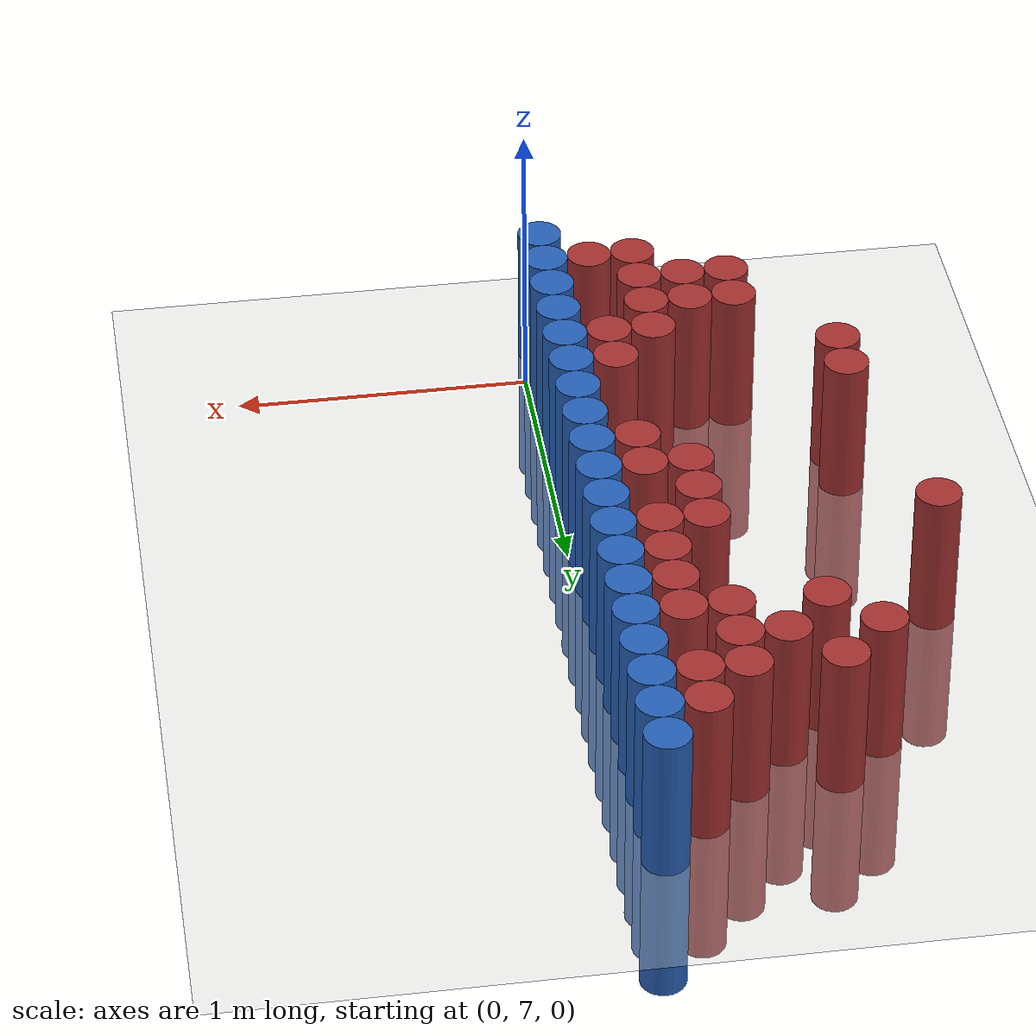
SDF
<sdf version="1.6">
 <world name="default">
  <model name="ground_plane">
   <static>1</static>
   <link name="link">
    <collision name="collision">
     <geometry><plane><normal>0 0 1</normal><size>100 100</size></plane></geometry>
     <surface><friction><ode><mu>100</mu><mu2>50</mu2></ode></friction></surface>
    </collision>
    <visual name="visual">
     <cast_shadows>0</cast_shadows>
     <geometry><plane><normal>0 0 1</normal><size>100 100</size></plane></geometry>
     <material>
      <script><uri>file://media/materials/scripts/gazebo.material</uri><name>Gazebo/Grey</name></script>
     </material>
    </visual>
   </link>
  </model>
  <model name="unit_cylinder_178">
   <static>1</static>
   <pose>-1.125000 8.475000 0.000000 0.000000 0.000000 0.000000</pose>
   <link name="link">
    <inertial>
     <mass>1</mass>
     <inertia><ixx>0.145833</ixx><ixy>0</ixy><ixz>0</ixz><iyy>0.145833</iyy><iyz>0</iyz><izz>0.125</izz></inertia>
    </inertial>
    <collision name="collision">
     <geometry><cylinder><radius>0.075000</radius><length>1</length></cylinder></geometry>
    </collision>
    <visual name="visual">
     <geometry><cylinder><radius>0.075000</radius><length>1</length></cylinder></geometry>
     <material>
      <ambient>0.648000 0.192000 0.192000 1</ambient>
      <diffuse>0.648000 0.192000 0.192000 1</diffuse>
     </material>
     <material>
      <script><name>Gazebo/Grey</name><uri>file://media/materials/scripts/gazebo.material</uri></script>
     </material>
    </visual>
   </link>
  </model>
  <model name="unit_cylinder_179">
   <static>1</static>
   <pose>-0.975000 7.575000 0.000000 0.000000 0.000000 0.000000</pose>
   <link name="link">
    <inertial>
     <mass>1</mass>
     <inertia><ixx>0.145833</ixx><ixy>0</ixy><ixz>0</ixz><iyy>0.145833</iyy><iyz>0</iyz><izz>0.125</izz></inertia>
    </inertial>
    <collision name="collision">
     <geometry><cylinder><radius>0.075000</radius><length>1</length></cylinder></geometry>
    </collision>
    <visual name="visual">
     <geometry><cylinder><radius>0.075000</radius><length>1</length></cylinder></geometry>
     <material>
      <ambient>0.648000 0.192000 0.192000 1</ambient>
      <diffuse>0.648000 0.192000 0.192000 1</diffuse>
     </material>
     <material>
      <script><name>Gazebo/Grey</name><uri>file://media/materials/scripts/gazebo.material</uri></script>
     </material>
    </visual>
   </link>
  </model>
  <model name="unit_cylinder_180">
   <static>1</static>
   <pose>-0.975000 7.725000 0.000000 0.000000 0.000000 0.000000</pose>
   <link name="link">
    <inertial>
     <mass>1</mass>
     <inertia><ixx>0.145833</ixx><ixy>0</ixy><ixz>0</ixz><iyy>0.145833</iyy><iyz>0</iyz><izz>0.125</izz></inertia>
    </inertial>
    <collision name="collision">
     <geometry><cylinder><radius>0.075000</radius><length>1</length></cylinder></geometry>
    </collision>
    <visual name="visual">
     <geometry><cylinder><radius>0.075000</radius><length>1</length></cylinder></geometry>
     <material>
      <ambient>0.648000 0.192000 0.192000 1</ambient>
      <diffuse>0.648000 0.192000 0.192000 1</diffuse>
     </material>
     <material>
      <script><name>Gazebo/Grey</name><uri>file://media/materials/scripts/gazebo.material</uri></script>
     </material>
    </visual>
   </link>
  </model>
  <model name="unit_cylinder_183">
   <static>1</static>
   <pose>-0.825000 9.075000 0.000000 0.000000 0.000000 0.000000</pose>
   <link name="link">
    <inertial>
     <mass>1</mass>
     <inertia><ixx>0.145833</ixx><ixy>0</ixy><ixz>0</ixz><iyy>0.145833</iyy><iyz>0</iyz><izz>0.125</izz></inertia>
    </inertial>
    <collision name="collision">
     <geometry><cylinder><radius>0.075000</radius><length>1</length></cylinder></geometry>
    </collision>
    <visual name="visual">
     <geometry><cylinder><radius>0.075000</radius><length>1</length></cylinder></geometry>
     <material>
      <ambient>0.648000 0.192000 0.192000 1</ambient>
      <diffuse>0.648000 0.192000 0.192000 1</diffuse>
     </material>
     <material>
      <script><name>Gazebo/Grey</name><uri>file://media/materials/scripts/gazebo.material</uri></script>
     </material>
    </visual>
   </link>
  </model>
  <model name="unit_cylinder_188">
   <static>1</static>
   <pose>-0.675000 7.125000 0.000000 0.000000 0.000000 0.000000</pose>
   <link name="link">
    <inertial>
     <mass>1</mass>
     <inertia><ixx>0.145833</ixx><ixy>0</ixy><ixz>0</ixz><iyy>0.145833</iyy><iyz>0</iyz><izz>0.125</izz></inertia>
    </inertial>
    <collision name="collision">
     <geometry><cylinder><radius>0.075000</radius><length>1</length></cylinder></geometry>
    </collision>
    <visual name="visual">
     <geometry><cylinder><radius>0.075000</radius><length>1</length></cylinder></geometry>
     <material>
      <ambient>0.648000 0.192000 0.192000 1</ambient>
      <diffuse>0.648000 0.192000 0.192000 1</diffuse>
     </material>
     <material>
      <script><name>Gazebo/Grey</name><uri>file://media/materials/scripts/gazebo.material</uri></script>
     </material>
    </visual>
   </link>
  </model>
  <model name="unit_cylinder_189">
   <static>1</static>
   <pose>-0.675000 7.275000 0.000000 0.000000 0.000000 0.000000</pose>
   <link name="link">
    <inertial>
     <mass>1</mass>
     <inertia><ixx>0.145833</ixx><ixy>0</ixy><ixz>0</ixz><iyy>0.145833</iyy><iyz>0</iyz><izz>0.125</izz></inertia>
    </inertial>
    <collision name="collision">
     <geometry><cylinder><radius>0.075000</radius><length>1</length></cylinder></geometry>
    </collision>
    <visual name="visual">
     <geometry><cylinder><radius>0.075000</radius><length>1</length></cylinder></geometry>
     <material>
      <ambient>0.648000 0.192000 0.192000 1</ambient>
      <diffuse>0.648000 0.192000 0.192000 1</diffuse>
     </material>
     <material>
      <script><name>Gazebo/Grey</name><uri>file://media/materials/scripts/gazebo.material</uri></script>
     </material>
    </visual>
   </link>
  </model>
  <model name="unit_cylinder_190">
   <static>1</static>
   <pose>-0.675000 8.925000 0.000000 0.000000 0.000000 0.000000</pose>
   <link name="link">
    <inertial>
     <mass>1</mass>
     <inertia><ixx>0.145833</ixx><ixy>0</ixy><ixz>0</ixz><iyy>0.145833</iyy><iyz>0</iyz><izz>0.125</izz></inertia>
    </inertial>
    <collision name="collision">
     <geometry><cylinder><radius>0.075000</radius><length>1</length></cylinder></geometry>
    </collision>
    <visual name="visual">
     <geometry><cylinder><radius>0.075000</radius><length>1</length></cylinder></geometry>
     <material>
      <ambient>0.648000 0.192000 0.192000 1</ambient>
      <diffuse>0.648000 0.192000 0.192000 1</diffuse>
     </material>
     <material>
      <script><name>Gazebo/Grey</name><uri>file://media/materials/scripts/gazebo.material</uri></script>
     </material>
    </visual>
   </link>
  </model>
  <model name="unit_cylinder_191">
   <static>1</static>
   <pose>-0.675000 9.225000 0.000000 0.000000 0.000000 0.000000</pose>
   <link name="link">
    <inertial>
     <mass>1</mass>
     <inertia><ixx>0.145833</ixx><ixy>0</ixy><ixz>0</ixz><iyy>0.145833</iyy><iyz>0</iyz><izz>0.125</izz></inertia>
    </inertial>
    <collision name="collision">
     <geometry><cylinder><radius>0.075000</radius><length>1</length></cylinder></geometry>
    </collision>
    <visual name="visual">
     <geometry><cylinder><radius>0.075000</radius><length>1</length></cylinder></geometry>
     <material>
      <ambient>0.648000 0.192000 0.192000 1</ambient>
      <diffuse>0.648000 0.192000 0.192000 1</diffuse>
     </material>
     <material>
      <script><name>Gazebo/Grey</name><uri>file://media/materials/scripts/gazebo.material</uri></script>
     </material>
    </visual>
   </link>
  </model>
  <model name="unit_cylinder_195">
   <static>1</static>
   <pose>-0.525000 7.125000 0.000000 0.000000 0.000000 0.000000</pose>
   <link name="link">
    <inertial>
     <mass>1</mass>
     <inertia><ixx>0.145833</ixx><ixy>0</ixy><ixz>0</ixz><iyy>0.145833</iyy><iyz>0</iyz><izz>0.125</izz></inertia>
    </inertial>
    <collision name="collision">
     <geometry><cylinder><radius>0.075000</radius><length>1</length></cylinder></geometry>
    </collision>
    <visual name="visual">
     <geometry><cylinder><radius>0.075000</radius><length>1</length></cylinder></geometry>
     <material>
      <ambient>0.648000 0.192000 0.192000 1</ambient>
      <diffuse>0.648000 0.192000 0.192000 1</diffuse>
     </material>
     <material>
      <script><name>Gazebo/Grey</name><uri>file://media/materials/scripts/gazebo.material</uri></script>
     </material>
    </visual>
   </link>
  </model>
  <model name="unit_cylinder_196">
   <static>1</static>
   <pose>-0.525000 7.275000 0.000000 0.000000 0.000000 0.000000</pose>
   <link name="link">
    <inertial>
     <mass>1</mass>
     <inertia><ixx>0.145833</ixx><ixy>0</ixy><ixz>0</ixz><iyy>0.145833</iyy><iyz>0</iyz><izz>0.125</izz></inertia>
    </inertial>
    <collision name="collision">
     <geometry><cylinder><radius>0.075000</radius><length>1</length></cylinder></geometry>
    </collision>
    <visual name="visual">
     <geometry><cylinder><radius>0.075000</radius><length>1</length></cylinder></geometry>
     <material>
      <ambient>0.648000 0.192000 0.192000 1</ambient>
      <diffuse>0.648000 0.192000 0.192000 1</diffuse>
     </material>
     <material>
      <script><name>Gazebo/Grey</name><uri>file://media/materials/scripts/gazebo.material</uri></script>
     </material>
    </visual>
   </link>
  </model>
  <model name="unit_cylinder_197">
   <static>1</static>
   <pose>-0.525000 9.075000 0.000000 0.000000 0.000000 0.000000</pose>
   <link name="link">
    <inertial>
     <mass>1</mass>
     <inertia><ixx>0.145833</ixx><ixy>0</ixy><ixz>0</ixz><iyy>0.145833</iyy><iyz>0</iyz><izz>0.125</izz></inertia>
    </inertial>
    <collision name="collision">
     <geometry><cylinder><radius>0.075000</radius><length>1</length></cylinder></geometry>
    </collision>
    <visual name="visual">
     <geometry><cylinder><radius>0.075000</radius><length>1</length></cylinder></geometry>
     <material>
      <ambient>0.648000 0.192000 0.192000 1</ambient>
      <diffuse>0.648000 0.192000 0.192000 1</diffuse>
     </material>
     <material>
      <script><name>Gazebo/Grey</name><uri>file://media/materials/scripts/gazebo.material</uri></script>
     </material>
    </visual>
   </link>
  </model>
  <model name="unit_cylinder_200">
   <static>1</static>
   <pose>-0.375000 6.975000 0.000000 0.000000 0.000000 0.000000</pose>
   <link name="link">
    <inertial>
     <mass>1</mass>
     <inertia><ixx>0.145833</ixx><ixy>0</ixy><ixz>0</ixz><iyy>0.145833</iyy><iyz>0</iyz><izz>0.125</izz></inertia>
    </inertial>
    <collision name="collision">
     <geometry><cylinder><radius>0.075000</radius><length>1</length></cylinder></geometry>
    </collision>
    <visual name="visual">
     <geometry><cylinder><radius>0.075000</radius><length>1</length></cylinder></geometry>
     <material>
      <ambient>0.648000 0.192000 0.192000 1</ambient>
      <diffuse>0.648000 0.192000 0.192000 1</diffuse>
     </material>
     <material>
      <script><name>Gazebo/Grey</name><uri>file://media/materials/scripts/gazebo.material</uri></script>
     </material>
    </visual>
   </link>
  </model>
  <model name="unit_cylinder_201">
   <static>1</static>
   <pose>-0.375000 7.125000 0.000000 0.000000 0.000000 0.000000</pose>
   <link name="link">
    <inertial>
     <mass>1</mass>
     <inertia><ixx>0.145833</ixx><ixy>0</ixy><ixz>0</ixz><iyy>0.145833</iyy><iyz>0</iyz><izz>0.125</izz></inertia>
    </inertial>
    <collision name="collision">
     <geometry><cylinder><radius>0.075000</radius><length>1</length></cylinder></geometry>
    </collision>
    <visual name="visual">
     <geometry><cylinder><radius>0.075000</radius><length>1</length></cylinder></geometry>
     <material>
      <ambient>0.648000 0.192000 0.192000 1</ambient>
      <diffuse>0.648000 0.192000 0.192000 1</diffuse>
     </material>
     <material>
      <script><name>Gazebo/Grey</name><uri>file://media/materials/scripts/gazebo.material</uri></script>
     </material>
    </visual>
   </link>
  </model>
  <model name="unit_cylinder_202">
   <static>1</static>
   <pose>-0.375000 7.275000 0.000000 0.000000 0.000000 0.000000</pose>
   <link name="link">
    <inertial>
     <mass>1</mass>
     <inertia><ixx>0.145833</ixx><ixy>0</ixy><ixz>0</ixz><iyy>0.145833</iyy><iyz>0</iyz><izz>0.125</izz></inertia>
    </inertial>
    <collision name="collision">
     <geometry><cylinder><radius>0.075000</radius><length>1</length></cylinder></geometry>
    </collision>
    <visual name="visual">
     <geometry><cylinder><radius>0.075000</radius><length>1</length></cylinder></geometry>
     <material>
      <ambient>0.648000 0.192000 0.192000 1</ambient>
      <diffuse>0.648000 0.192000 0.192000 1</diffuse>
     </material>
     <material>
      <script><name>Gazebo/Grey</name><uri>file://media/materials/scripts/gazebo.material</uri></script>
     </material>
    </visual>
   </link>
  </model>
  <model name="unit_cylinder_203">
   <static>1</static>
   <pose>-0.375000 7.425000 0.000000 0.000000 0.000000 0.000000</pose>
   <link name="link">
    <inertial>
     <mass>1</mass>
     <inertia><ixx>0.145833</ixx><ixy>0</ixy><ixz>0</ixz><iyy>0.145833</iyy><iyz>0</iyz><izz>0.125</izz></inertia>
    </inertial>
    <collision name="collision">
     <geometry><cylinder><radius>0.075000</radius><length>1</length></cylinder></geometry>
    </collision>
    <visual name="visual">
     <geometry><cylinder><radius>0.075000</radius><length>1</length></cylinder></geometry>
     <material>
      <ambient>0.648000 0.192000 0.192000 1</ambient>
      <diffuse>0.648000 0.192000 0.192000 1</diffuse>
     </material>
     <material>
      <script><name>Gazebo/Grey</name><uri>file://media/materials/scripts/gazebo.material</uri></script>
     </material>
    </visual>
   </link>
  </model>
  <model name="unit_cylinder_204">
   <static>1</static>
   <pose>-0.375000 8.175000 0.000000 0.000000 0.000000 0.000000</pose>
   <link name="link">
    <inertial>
     <mass>1</mass>
     <inertia><ixx>0.145833</ixx><ixy>0</ixy><ixz>0</ixz><iyy>0.145833</iyy><iyz>0</iyz><izz>0.125</izz></inertia>
    </inertial>
    <collision name="collision">
     <geometry><cylinder><radius>0.075000</radius><length>1</length></cylinder></geometry>
    </collision>
    <visual name="visual">
     <geometry><cylinder><radius>0.075000</radius><length>1</length></cylinder></geometry>
     <material>
      <ambient>0.648000 0.192000 0.192000 1</ambient>
      <diffuse>0.648000 0.192000 0.192000 1</diffuse>
     </material>
     <material>
      <script><name>Gazebo/Grey</name><uri>file://media/materials/scripts/gazebo.material</uri></script>
     </material>
    </visual>
   </link>
  </model>
  <model name="unit_cylinder_205">
   <static>1</static>
   <pose>-0.375000 8.325000 0.000000 0.000000 0.000000 0.000000</pose>
   <link name="link">
    <inertial>
     <mass>1</mass>
     <inertia><ixx>0.145833</ixx><ixy>0</ixy><ixz>0</ixz><iyy>0.145833</iyy><iyz>0</iyz><izz>0.125</izz></inertia>
    </inertial>
    <collision name="collision">
     <geometry><cylinder><radius>0.075000</radius><length>1</length></cylinder></geometry>
    </collision>
    <visual name="visual">
     <geometry><cylinder><radius>0.075000</radius><length>1</length></cylinder></geometry>
     <material>
      <ambient>0.648000 0.192000 0.192000 1</ambient>
      <diffuse>0.648000 0.192000 0.192000 1</diffuse>
     </material>
     <material>
      <script><name>Gazebo/Grey</name><uri>file://media/materials/scripts/gazebo.material</uri></script>
     </material>
    </visual>
   </link>
  </model>
  <model name="unit_cylinder_206">
   <static>1</static>
   <pose>-0.375000 8.475000 0.000000 0.000000 0.000000 0.000000</pose>
   <link name="link">
    <inertial>
     <mass>1</mass>
     <inertia><ixx>0.145833</ixx><ixy>0</ixy><ixz>0</ixz><iyy>0.145833</iyy><iyz>0</iyz><izz>0.125</izz></inertia>
    </inertial>
    <collision name="collision">
     <geometry><cylinder><radius>0.075000</radius><length>1</length></cylinder></geometry>
    </collision>
    <visual name="visual">
     <geometry><cylinder><radius>0.075000</radius><length>1</length></cylinder></geometry>
     <material>
      <ambient>0.648000 0.192000 0.192000 1</ambient>
      <diffuse>0.648000 0.192000 0.192000 1</diffuse>
     </material>
     <material>
      <script><name>Gazebo/Grey</name><uri>file://media/materials/scripts/gazebo.material</uri></script>
     </material>
    </visual>
   </link>
  </model>
  <model name="unit_cylinder_207">
   <static>1</static>
   <pose>-0.375000 8.925000 0.000000 0.000000 0.000000 0.000000</pose>
   <link name="link">
    <inertial>
     <mass>1</mass>
     <inertia><ixx>0.145833</ixx><ixy>0</ixy><ixz>0</ixz><iyy>0.145833</iyy><iyz>0</iyz><izz>0.125</izz></inertia>
    </inertial>
    <collision name="collision">
     <geometry><cylinder><radius>0.075000</radius><length>1</length></cylinder></geometry>
    </collision>
    <visual name="visual">
     <geometry><cylinder><radius>0.075000</radius><length>1</length></cylinder></geometry>
     <material>
      <ambient>0.648000 0.192000 0.192000 1</ambient>
      <diffuse>0.648000 0.192000 0.192000 1</diffuse>
     </material>
     <material>
      <script><name>Gazebo/Grey</name><uri>file://media/materials/scripts/gazebo.material</uri></script>
     </material>
    </visual>
   </link>
  </model>
  <model name="unit_cylinder_208">
   <static>1</static>
   <pose>-0.375000 9.075000 0.000000 0.000000 0.000000 0.000000</pose>
   <link name="link">
    <inertial>
     <mass>1</mass>
     <inertia><ixx>0.145833</ixx><ixy>0</ixy><ixz>0</ixz><iyy>0.145833</iyy><iyz>0</iyz><izz>0.125</izz></inertia>
    </inertial>
    <collision name="collision">
     <geometry><cylinder><radius>0.075000</radius><length>1</length></cylinder></geometry>
    </collision>
    <visual name="visual">
     <geometry><cylinder><radius>0.075000</radius><length>1</length></cylinder></geometry>
     <material>
      <ambient>0.648000 0.192000 0.192000 1</ambient>
      <diffuse>0.648000 0.192000 0.192000 1</diffuse>
     </material>
     <material>
      <script><name>Gazebo/Grey</name><uri>file://media/materials/scripts/gazebo.material</uri></script>
     </material>
    </visual>
   </link>
  </model>
  <model name="unit_cylinder_209">
   <static>1</static>
   <pose>-0.375000 9.225000 0.000000 0.000000 0.000000 0.000000</pose>
   <link name="link">
    <inertial>
     <mass>1</mass>
     <inertia><ixx>0.145833</ixx><ixy>0</ixy><ixz>0</ixz><iyy>0.145833</iyy><iyz>0</iyz><izz>0.125</izz></inertia>
    </inertial>
    <collision name="collision">
     <geometry><cylinder><radius>0.075000</radius><length>1</length></cylinder></geometry>
    </collision>
    <visual name="visual">
     <geometry><cylinder><radius>0.075000</radius><length>1</length></cylinder></geometry>
     <material>
      <ambient>0.648000 0.192000 0.192000 1</ambient>
      <diffuse>0.648000 0.192000 0.192000 1</diffuse>
     </material>
     <material>
      <script><name>Gazebo/Grey</name><uri>file://media/materials/scripts/gazebo.material</uri></script>
     </material>
    </visual>
   </link>
  </model>
  <model name="unit_cylinder_214">
   <static>1</static>
   <pose>-0.225000 6.975000 0.000000 0.000000 0.000000 0.000000</pose>
   <link name="link">
    <inertial>
     <mass>1</mass>
     <inertia><ixx>0.145833</ixx><ixy>0</ixy><ixz>0</ixz><iyy>0.145833</iyy><iyz>0</iyz><izz>0.125</izz></inertia>
    </inertial>
    <collision name="collision">
     <geometry><cylinder><radius>0.075000</radius><length>1</length></cylinder></geometry>
    </collision>
    <visual name="visual">
     <geometry><cylinder><radius>0.075000</radius><length>1</length></cylinder></geometry>
     <material>
      <ambient>0.648000 0.192000 0.192000 1</ambient>
      <diffuse>0.648000 0.192000 0.192000 1</diffuse>
     </material>
     <material>
      <script><name>Gazebo/Grey</name><uri>file://media/materials/scripts/gazebo.material</uri></script>
     </material>
    </visual>
   </link>
  </model>
  <model name="unit_cylinder_215">
   <static>1</static>
   <pose>-0.225000 7.425000 0.000000 0.000000 0.000000 0.000000</pose>
   <link name="link">
    <inertial>
     <mass>1</mass>
     <inertia><ixx>0.145833</ixx><ixy>0</ixy><ixz>0</ixz><iyy>0.145833</iyy><iyz>0</iyz><izz>0.125</izz></inertia>
    </inertial>
    <collision name="collision">
     <geometry><cylinder><radius>0.075000</radius><length>1</length></cylinder></geometry>
    </collision>
    <visual name="visual">
     <geometry><cylinder><radius>0.075000</radius><length>1</length></cylinder></geometry>
     <material>
      <ambient>0.648000 0.192000 0.192000 1</ambient>
      <diffuse>0.648000 0.192000 0.192000 1</diffuse>
     </material>
     <material>
      <script><name>Gazebo/Grey</name><uri>file://media/materials/scripts/gazebo.material</uri></script>
     </material>
    </visual>
   </link>
  </model>
  <model name="unit_cylinder_216">
   <static>1</static>
   <pose>-0.225000 7.575000 0.000000 0.000000 0.000000 0.000000</pose>
   <link name="link">
    <inertial>
     <mass>1</mass>
     <inertia><ixx>0.145833</ixx><ixy>0</ixy><ixz>0</ixz><iyy>0.145833</iyy><iyz>0</iyz><izz>0.125</izz></inertia>
    </inertial>
    <collision name="collision">
     <geometry><cylinder><radius>0.075000</radius><length>1</length></cylinder></geometry>
    </collision>
    <visual name="visual">
     <geometry><cylinder><radius>0.075000</radius><length>1</length></cylinder></geometry>
     <material>
      <ambient>0.648000 0.192000 0.192000 1</ambient>
      <diffuse>0.648000 0.192000 0.192000 1</diffuse>
     </material>
     <material>
      <script><name>Gazebo/Grey</name><uri>file://media/materials/scripts/gazebo.material</uri></script>
     </material>
    </visual>
   </link>
  </model>
  <model name="unit_cylinder_217">
   <static>1</static>
   <pose>-0.225000 8.025000 0.000000 0.000000 0.000000 0.000000</pose>
   <link name="link">
    <inertial>
     <mass>1</mass>
     <inertia><ixx>0.145833</ixx><ixy>0</ixy><ixz>0</ixz><iyy>0.145833</iyy><iyz>0</iyz><izz>0.125</izz></inertia>
    </inertial>
    <collision name="collision">
     <geometry><cylinder><radius>0.075000</radius><length>1</length></cylinder></geometry>
    </collision>
    <visual name="visual">
     <geometry><cylinder><radius>0.075000</radius><length>1</length></cylinder></geometry>
     <material>
      <ambient>0.648000 0.192000 0.192000 1</ambient>
      <diffuse>0.648000 0.192000 0.192000 1</diffuse>
     </material>
     <material>
      <script><name>Gazebo/Grey</name><uri>file://media/materials/scripts/gazebo.material</uri></script>
     </material>
    </visual>
   </link>
  </model>
  <model name="unit_cylinder_218">
   <static>1</static>
   <pose>-0.225000 8.175000 0.000000 0.000000 0.000000 0.000000</pose>
   <link name="link">
    <inertial>
     <mass>1</mass>
     <inertia><ixx>0.145833</ixx><ixy>0</ixy><ixz>0</ixz><iyy>0.145833</iyy><iyz>0</iyz><izz>0.125</izz></inertia>
    </inertial>
    <collision name="collision">
     <geometry><cylinder><radius>0.075000</radius><length>1</length></cylinder></geometry>
    </collision>
    <visual name="visual">
     <geometry><cylinder><radius>0.075000</radius><length>1</length></cylinder></geometry>
     <material>
      <ambient>0.648000 0.192000 0.192000 1</ambient>
      <diffuse>0.648000 0.192000 0.192000 1</diffuse>
     </material>
     <material>
      <script><name>Gazebo/Grey</name><uri>file://media/materials/scripts/gazebo.material</uri></script>
     </material>
    </visual>
   </link>
  </model>
  <model name="unit_cylinder_219">
   <static>1</static>
   <pose>-0.225000 8.475000 0.000000 0.000000 0.000000 0.000000</pose>
   <link name="link">
    <inertial>
     <mass>1</mass>
     <inertia><ixx>0.145833</ixx><ixy>0</ixy><ixz>0</ixz><iyy>0.145833</iyy><iyz>0</iyz><izz>0.125</izz></inertia>
    </inertial>
    <collision name="collision">
     <geometry><cylinder><radius>0.075000</radius><length>1</length></cylinder></geometry>
    </collision>
    <visual name="visual">
     <geometry><cylinder><radius>0.075000</radius><length>1</length></cylinder></geometry>
     <material>
      <ambient>0.648000 0.192000 0.192000 1</ambient>
      <diffuse>0.648000 0.192000 0.192000 1</diffuse>
     </material>
     <material>
      <script><name>Gazebo/Grey</name><uri>file://media/materials/scripts/gazebo.material</uri></script>
     </material>
    </visual>
   </link>
  </model>
  <model name="unit_cylinder_220">
   <static>1</static>
   <pose>-0.225000 8.625000 0.000000 0.000000 0.000000 0.000000</pose>
   <link name="link">
    <inertial>
     <mass>1</mass>
     <inertia><ixx>0.145833</ixx><ixy>0</ixy><ixz>0</ixz><iyy>0.145833</iyy><iyz>0</iyz><izz>0.125</izz></inertia>
    </inertial>
    <collision name="collision">
     <geometry><cylinder><radius>0.075000</radius><length>1</length></cylinder></geometry>
    </collision>
    <visual name="visual">
     <geometry><cylinder><radius>0.075000</radius><length>1</length></cylinder></geometry>
     <material>
      <ambient>0.648000 0.192000 0.192000 1</ambient>
      <diffuse>0.648000 0.192000 0.192000 1</diffuse>
     </material>
     <material>
      <script><name>Gazebo/Grey</name><uri>file://media/materials/scripts/gazebo.material</uri></script>
     </material>
    </visual>
   </link>
  </model>
  <model name="unit_cylinder_221">
   <static>1</static>
   <pose>-0.225000 8.775000 0.000000 0.000000 0.000000 0.000000</pose>
   <link name="link">
    <inertial>
     <mass>1</mass>
     <inertia><ixx>0.145833</ixx><ixy>0</ixy><ixz>0</ixz><iyy>0.145833</iyy><iyz>0</iyz><izz>0.125</izz></inertia>
    </inertial>
    <collision name="collision">
     <geometry><cylinder><radius>0.075000</radius><length>1</length></cylinder></geometry>
    </collision>
    <visual name="visual">
     <geometry><cylinder><radius>0.075000</radius><length>1</length></cylinder></geometry>
     <material>
      <ambient>0.648000 0.192000 0.192000 1</ambient>
      <diffuse>0.648000 0.192000 0.192000 1</diffuse>
     </material>
     <material>
      <script><name>Gazebo/Grey</name><uri>file://media/materials/scripts/gazebo.material</uri></script>
     </material>
    </visual>
   </link>
  </model>
  <model name="unit_cylinder_222">
   <static>1</static>
   <pose>-0.225000 8.925000 0.000000 0.000000 0.000000 0.000000</pose>
   <link name="link">
    <inertial>
     <mass>1</mass>
     <inertia><ixx>0.145833</ixx><ixy>0</ixy><ixz>0</ixz><iyy>0.145833</iyy><iyz>0</iyz><izz>0.125</izz></inertia>
    </inertial>
    <collision name="collision">
     <geometry><cylinder><radius>0.075000</radius><length>1</length></cylinder></geometry>
    </collision>
    <visual name="visual">
     <geometry><cylinder><radius>0.075000</radius><length>1</length></cylinder></geometry>
     <material>
      <ambient>0.648000 0.192000 0.192000 1</ambient>
      <diffuse>0.648000 0.192000 0.192000 1</diffuse>
     </material>
     <material>
      <script><name>Gazebo/Grey</name><uri>file://media/materials/scripts/gazebo.material</uri></script>
     </material>
    </visual>
   </link>
  </model>
  <model name="unit_cylinder_223">
   <static>1</static>
   <pose>-0.225000 9.225000 0.000000 0.000000 0.000000 0.000000</pose>
   <link name="link">
    <inertial>
     <mass>1</mass>
     <inertia><ixx>0.145833</ixx><ixy>0</ixy><ixz>0</ixz><iyy>0.145833</iyy><iyz>0</iyz><izz>0.125</izz></inertia>
    </inertial>
    <collision name="collision">
     <geometry><cylinder><radius>0.075000</radius><length>1</length></cylinder></geometry>
    </collision>
    <visual name="visual">
     <geometry><cylinder><radius>0.075000</radius><length>1</length></cylinder></geometry>
     <material>
      <ambient>0.648000 0.192000 0.192000 1</ambient>
      <diffuse>0.648000 0.192000 0.192000 1</diffuse>
     </material>
     <material>
      <script><name>Gazebo/Grey</name><uri>file://media/materials/scripts/gazebo.material</uri></script>
     </material>
    </visual>
   </link>
  </model>
  <model name="unit_cylinder_224">
   <static>1</static>
   <pose>-0.225000 9.375000 0.000000 0.000000 0.000000 0.000000</pose>
   <link name="link">
    <inertial>
     <mass>1</mass>
     <inertia><ixx>0.145833</ixx><ixy>0</ixy><ixz>0</ixz><iyy>0.145833</iyy><iyz>0</iyz><izz>0.125</izz></inertia>
    </inertial>
    <collision name="collision">
     <geometry><cylinder><radius>0.075000</radius><length>1</length></cylinder></geometry>
    </collision>
    <visual name="visual">
     <geometry><cylinder><radius>0.075000</radius><length>1</length></cylinder></geometry>
     <material>
      <ambient>0.648000 0.192000 0.192000 1</ambient>
      <diffuse>0.648000 0.192000 0.192000 1</diffuse>
     </material>
     <material>
      <script><name>Gazebo/Grey</name><uri>file://media/materials/scripts/gazebo.material</uri></script>
     </material>
    </visual>
   </link>
  </model>
  <model name="unit_cylinder_236">
   <static>1</static>
   <pose>-0.075000 6.825000 0.000000 0.000000 0.000000 0.000000</pose>
   <link name="link">
    <inertial>
     <mass>1</mass>
     <inertia><ixx>0.145833</ixx><ixy>0</ixy><ixz>0</ixz><iyy>0.145833</iyy><iyz>0</iyz><izz>0.125</izz></inertia>
    </inertial>
    <collision name="collision">
     <geometry><cylinder><radius>0.075000</radius><length>1</length></cylinder></geometry>
    </collision>
    <visual name="visual">
     <geometry><cylinder><radius>0.075000</radius><length>1</length></cylinder></geometry>
     <material>
      <ambient>0.152000 0.379000 0.720000 1</ambient>
      <diffuse>0.152000 0.379000 0.720000 1</diffuse>
     </material>
     <material>
      <script><name>Gazebo/Grey</name><uri>file://media/materials/scripts/gazebo.material</uri></script>
     </material>
    </visual>
   </link>
  </model>
  <model name="unit_cylinder_237">
   <static>1</static>
   <pose>-0.075000 6.975000 0.000000 0.000000 0.000000 0.000000</pose>
   <link name="link">
    <inertial>
     <mass>1</mass>
     <inertia><ixx>0.145833</ixx><ixy>0</ixy><ixz>0</ixz><iyy>0.145833</iyy><iyz>0</iyz><izz>0.125</izz></inertia>
    </inertial>
    <collision name="collision">
     <geometry><cylinder><radius>0.075000</radius><length>1</length></cylinder></geometry>
    </collision>
    <visual name="visual">
     <geometry><cylinder><radius>0.075000</radius><length>1</length></cylinder></geometry>
     <material>
      <ambient>0.152000 0.379000 0.720000 1</ambient>
      <diffuse>0.152000 0.379000 0.720000 1</diffuse>
     </material>
     <material>
      <script><name>Gazebo/Grey</name><uri>file://media/materials/scripts/gazebo.material</uri></script>
     </material>
    </visual>
   </link>
  </model>
  <model name="unit_cylinder_238">
   <static>1</static>
   <pose>-0.075000 7.125000 0.000000 0.000000 0.000000 0.000000</pose>
   <link name="link">
    <inertial>
     <mass>1</mass>
     <inertia><ixx>0.145833</ixx><ixy>0</ixy><ixz>0</ixz><iyy>0.145833</iyy><iyz>0</iyz><izz>0.125</izz></inertia>
    </inertial>
    <collision name="collision">
     <geometry><cylinder><radius>0.075000</radius><length>1</length></cylinder></geometry>
    </collision>
    <visual name="visual">
     <geometry><cylinder><radius>0.075000</radius><length>1</length></cylinder></geometry>
     <material>
      <ambient>0.152000 0.379000 0.720000 1</ambient>
      <diffuse>0.152000 0.379000 0.720000 1</diffuse>
     </material>
     <material>
      <script><name>Gazebo/Grey</name><uri>file://media/materials/scripts/gazebo.material</uri></script>
     </material>
    </visual>
   </link>
  </model>
  <model name="unit_cylinder_239">
   <static>1</static>
   <pose>-0.075000 7.275000 0.000000 0.000000 0.000000 0.000000</pose>
   <link name="link">
    <inertial>
     <mass>1</mass>
     <inertia><ixx>0.145833</ixx><ixy>0</ixy><ixz>0</ixz><iyy>0.145833</iyy><iyz>0</iyz><izz>0.125</izz></inertia>
    </inertial>
    <collision name="collision">
     <geometry><cylinder><radius>0.075000</radius><length>1</length></cylinder></geometry>
    </collision>
    <visual name="visual">
     <geometry><cylinder><radius>0.075000</radius><length>1</length></cylinder></geometry>
     <material>
      <ambient>0.152000 0.379000 0.720000 1</ambient>
      <diffuse>0.152000 0.379000 0.720000 1</diffuse>
     </material>
     <material>
      <script><name>Gazebo/Grey</name><uri>file://media/materials/scripts/gazebo.material</uri></script>
     </material>
    </visual>
   </link>
  </model>
  <model name="unit_cylinder_240">
   <static>1</static>
   <pose>-0.075000 7.425000 0.000000 0.000000 0.000000 0.000000</pose>
   <link name="link">
    <inertial>
     <mass>1</mass>
     <inertia><ixx>0.145833</ixx><ixy>0</ixy><ixz>0</ixz><iyy>0.145833</iyy><iyz>0</iyz><izz>0.125</izz></inertia>
    </inertial>
    <collision name="collision">
     <geometry><cylinder><radius>0.075000</radius><length>1</length></cylinder></geometry>
    </collision>
    <visual name="visual">
     <geometry><cylinder><radius>0.075000</radius><length>1</length></cylinder></geometry>
     <material>
      <ambient>0.152000 0.379000 0.720000 1</ambient>
      <diffuse>0.152000 0.379000 0.720000 1</diffuse>
     </material>
     <material>
      <script><name>Gazebo/Grey</name><uri>file://media/materials/scripts/gazebo.material</uri></script>
     </material>
    </visual>
   </link>
  </model>
  <model name="unit_cylinder_241">
   <static>1</static>
   <pose>-0.075000 7.575000 0.000000 0.000000 0.000000 0.000000</pose>
   <link name="link">
    <inertial>
     <mass>1</mass>
     <inertia><ixx>0.145833</ixx><ixy>0</ixy><ixz>0</ixz><iyy>0.145833</iyy><iyz>0</iyz><izz>0.125</izz></inertia>
    </inertial>
    <collision name="collision">
     <geometry><cylinder><radius>0.075000</radius><length>1</length></cylinder></geometry>
    </collision>
    <visual name="visual">
     <geometry><cylinder><radius>0.075000</radius><length>1</length></cylinder></geometry>
     <material>
      <ambient>0.152000 0.379000 0.720000 1</ambient>
      <diffuse>0.152000 0.379000 0.720000 1</diffuse>
     </material>
     <material>
      <script><name>Gazebo/Grey</name><uri>file://media/materials/scripts/gazebo.material</uri></script>
     </material>
    </visual>
   </link>
  </model>
  <model name="unit_cylinder_242">
   <static>1</static>
   <pose>-0.075000 7.725000 0.000000 0.000000 0.000000 0.000000</pose>
   <link name="link">
    <inertial>
     <mass>1</mass>
     <inertia><ixx>0.145833</ixx><ixy>0</ixy><ixz>0</ixz><iyy>0.145833</iyy><iyz>0</iyz><izz>0.125</izz></inertia>
    </inertial>
    <collision name="collision">
     <geometry><cylinder><radius>0.075000</radius><length>1</length></cylinder></geometry>
    </collision>
    <visual name="visual">
     <geometry><cylinder><radius>0.075000</radius><length>1</length></cylinder></geometry>
     <material>
      <ambient>0.152000 0.379000 0.720000 1</ambient>
      <diffuse>0.152000 0.379000 0.720000 1</diffuse>
     </material>
     <material>
      <script><name>Gazebo/Grey</name><uri>file://media/materials/scripts/gazebo.material</uri></script>
     </material>
    </visual>
   </link>
  </model>
  <model name="unit_cylinder_243">
   <static>1</static>
   <pose>-0.075000 7.875000 0.000000 0.000000 0.000000 0.000000</pose>
   <link name="link">
    <inertial>
     <mass>1</mass>
     <inertia><ixx>0.145833</ixx><ixy>0</ixy><ixz>0</ixz><iyy>0.145833</iyy><iyz>0</iyz><izz>0.125</izz></inertia>
    </inertial>
    <collision name="collision">
     <geometry><cylinder><radius>0.075000</radius><length>1</length></cylinder></geometry>
    </collision>
    <visual name="visual">
     <geometry><cylinder><radius>0.075000</radius><length>1</length></cylinder></geometry>
     <material>
      <ambient>0.152000 0.379000 0.720000 1</ambient>
      <diffuse>0.152000 0.379000 0.720000 1</diffuse>
     </material>
     <material>
      <script><name>Gazebo/Grey</name><uri>file://media/materials/scripts/gazebo.material</uri></script>
     </material>
    </visual>
   </link>
  </model>
  <model name="unit_cylinder_244">
   <static>1</static>
   <pose>-0.075000 8.025000 0.000000 0.000000 0.000000 0.000000</pose>
   <link name="link">
    <inertial>
     <mass>1</mass>
     <inertia><ixx>0.145833</ixx><ixy>0</ixy><ixz>0</ixz><iyy>0.145833</iyy><iyz>0</iyz><izz>0.125</izz></inertia>
    </inertial>
    <collision name="collision">
     <geometry><cylinder><radius>0.075000</radius><length>1</length></cylinder></geometry>
    </collision>
    <visual name="visual">
     <geometry><cylinder><radius>0.075000</radius><length>1</length></cylinder></geometry>
     <material>
      <ambient>0.152000 0.379000 0.720000 1</ambient>
      <diffuse>0.152000 0.379000 0.720000 1</diffuse>
     </material>
     <material>
      <script><name>Gazebo/Grey</name><uri>file://media/materials/scripts/gazebo.material</uri></script>
     </material>
    </visual>
   </link>
  </model>
  <model name="unit_cylinder_245">
   <static>1</static>
   <pose>-0.075000 8.175000 0.000000 0.000000 0.000000 0.000000</pose>
   <link name="link">
    <inertial>
     <mass>1</mass>
     <inertia><ixx>0.145833</ixx><ixy>0</ixy><ixz>0</ixz><iyy>0.145833</iyy><iyz>0</iyz><izz>0.125</izz></inertia>
    </inertial>
    <collision name="collision">
     <geometry><cylinder><radius>0.075000</radius><length>1</length></cylinder></geometry>
    </collision>
    <visual name="visual">
     <geometry><cylinder><radius>0.075000</radius><length>1</length></cylinder></geometry>
     <material>
      <ambient>0.152000 0.379000 0.720000 1</ambient>
      <diffuse>0.152000 0.379000 0.720000 1</diffuse>
     </material>
     <material>
      <script><name>Gazebo/Grey</name><uri>file://media/materials/scripts/gazebo.material</uri></script>
     </material>
    </visual>
   </link>
  </model>
  <model name="unit_cylinder_246">
   <static>1</static>
   <pose>-0.075000 8.325000 0.000000 0.000000 0.000000 0.000000</pose>
   <link name="link">
    <inertial>
     <mass>1</mass>
     <inertia><ixx>0.145833</ixx><ixy>0</ixy><ixz>0</ixz><iyy>0.145833</iyy><iyz>0</iyz><izz>0.125</izz></inertia>
    </inertial>
    <collision name="collision">
     <geometry><cylinder><radius>0.075000</radius><length>1</length></cylinder></geometry>
    </collision>
    <visual name="visual">
     <geometry><cylinder><radius>0.075000</radius><length>1</length></cylinder></geometry>
     <material>
      <ambient>0.152000 0.379000 0.720000 1</ambient>
      <diffuse>0.152000 0.379000 0.720000 1</diffuse>
     </material>
     <material>
      <script><name>Gazebo/Grey</name><uri>file://media/materials/scripts/gazebo.material</uri></script>
     </material>
    </visual>
   </link>
  </model>
  <model name="unit_cylinder_247">
   <static>1</static>
   <pose>-0.075000 8.475000 0.000000 0.000000 0.000000 0.000000</pose>
   <link name="link">
    <inertial>
     <mass>1</mass>
     <inertia><ixx>0.145833</ixx><ixy>0</ixy><ixz>0</ixz><iyy>0.145833</iyy><iyz>0</iyz><izz>0.125</izz></inertia>
    </inertial>
    <collision name="collision">
     <geometry><cylinder><radius>0.075000</radius><length>1</length></cylinder></geometry>
    </collision>
    <visual name="visual">
     <geometry><cylinder><radius>0.075000</radius><length>1</length></cylinder></geometry>
     <material>
      <ambient>0.152000 0.379000 0.720000 1</ambient>
      <diffuse>0.152000 0.379000 0.720000 1</diffuse>
     </material>
     <material>
      <script><name>Gazebo/Grey</name><uri>file://media/materials/scripts/gazebo.material</uri></script>
     </material>
    </visual>
   </link>
  </model>
  <model name="unit_cylinder_248">
   <static>1</static>
   <pose>-0.075000 8.625000 0.000000 0.000000 0.000000 0.000000</pose>
   <link name="link">
    <inertial>
     <mass>1</mass>
     <inertia><ixx>0.145833</ixx><ixy>0</ixy><ixz>0</ixz><iyy>0.145833</iyy><iyz>0</iyz><izz>0.125</izz></inertia>
    </inertial>
    <collision name="collision">
     <geometry><cylinder><radius>0.075000</radius><length>1</length></cylinder></geometry>
    </collision>
    <visual name="visual">
     <geometry><cylinder><radius>0.075000</radius><length>1</length></cylinder></geometry>
     <material>
      <ambient>0.152000 0.379000 0.720000 1</ambient>
      <diffuse>0.152000 0.379000 0.720000 1</diffuse>
     </material>
     <material>
      <script><name>Gazebo/Grey</name><uri>file://media/materials/scripts/gazebo.material</uri></script>
     </material>
    </visual>
   </link>
  </model>
  <model name="unit_cylinder_249">
   <static>1</static>
   <pose>-0.075000 8.775000 0.000000 0.000000 0.000000 0.000000</pose>
   <link name="link">
    <inertial>
     <mass>1</mass>
     <inertia><ixx>0.145833</ixx><ixy>0</ixy><ixz>0</ixz><iyy>0.145833</iyy><iyz>0</iyz><izz>0.125</izz></inertia>
    </inertial>
    <collision name="collision">
     <geometry><cylinder><radius>0.075000</radius><length>1</length></cylinder></geometry>
    </collision>
    <visual name="visual">
     <geometry><cylinder><radius>0.075000</radius><length>1</length></cylinder></geometry>
     <material>
      <ambient>0.152000 0.379000 0.720000 1</ambient>
      <diffuse>0.152000 0.379000 0.720000 1</diffuse>
     </material>
     <material>
      <script><name>Gazebo/Grey</name><uri>file://media/materials/scripts/gazebo.material</uri></script>
     </material>
    </visual>
   </link>
  </model>
  <model name="unit_cylinder_250">
   <static>1</static>
   <pose>-0.075000 8.925000 0.000000 0.000000 0.000000 0.000000</pose>
   <link name="link">
    <inertial>
     <mass>1</mass>
     <inertia><ixx>0.145833</ixx><ixy>0</ixy><ixz>0</ixz><iyy>0.145833</iyy><iyz>0</iyz><izz>0.125</izz></inertia>
    </inertial>
    <collision name="collision">
     <geometry><cylinder><radius>0.075000</radius><length>1</length></cylinder></geometry>
    </collision>
    <visual name="visual">
     <geometry><cylinder><radius>0.075000</radius><length>1</length></cylinder></geometry>
     <material>
      <ambient>0.152000 0.379000 0.720000 1</ambient>
      <diffuse>0.152000 0.379000 0.720000 1</diffuse>
     </material>
     <material>
      <script><name>Gazebo/Grey</name><uri>file://media/materials/scripts/gazebo.material</uri></script>
     </material>
    </visual>
   </link>
  </model>
  <model name="unit_cylinder_251">
   <static>1</static>
   <pose>-0.075000 9.075000 0.000000 0.000000 0.000000 0.000000</pose>
   <link name="link">
    <inertial>
     <mass>1</mass>
     <inertia><ixx>0.145833</ixx><ixy>0</ixy><ixz>0</ixz><iyy>0.145833</iyy><iyz>0</iyz><izz>0.125</izz></inertia>
    </inertial>
    <collision name="collision">
     <geometry><cylinder><radius>0.075000</radius><length>1</length></cylinder></geometry>
    </collision>
    <visual name="visual">
     <geometry><cylinder><radius>0.075000</radius><length>1</length></cylinder></geometry>
     <material>
      <ambient>0.152000 0.379000 0.720000 1</ambient>
      <diffuse>0.152000 0.379000 0.720000 1</diffuse>
     </material>
     <material>
      <script><name>Gazebo/Grey</name><uri>file://media/materials/scripts/gazebo.material</uri></script>
     </material>
    </visual>
   </link>
  </model>
  <model name="unit_cylinder_252">
   <static>1</static>
   <pose>-0.075000 9.225000 0.000000 0.000000 0.000000 0.000000</pose>
   <link name="link">
    <inertial>
     <mass>1</mass>
     <inertia><ixx>0.145833</ixx><ixy>0</ixy><ixz>0</ixz><iyy>0.145833</iyy><iyz>0</iyz><izz>0.125</izz></inertia>
    </inertial>
    <collision name="collision">
     <geometry><cylinder><radius>0.075000</radius><length>1</length></cylinder></geometry>
    </collision>
    <visual name="visual">
     <geometry><cylinder><radius>0.075000</radius><length>1</length></cylinder></geometry>
     <material>
      <ambient>0.152000 0.379000 0.720000 1</ambient>
      <diffuse>0.152000 0.379000 0.720000 1</diffuse>
     </material>
     <material>
      <script><name>Gazebo/Grey</name><uri>file://media/materials/scripts/gazebo.material</uri></script>
     </material>
    </visual>
   </link>
  </model>
  <model name="unit_cylinder_253">
   <static>1</static>
   <pose>-0.075000 9.375000 0.000000 0.000000 0.000000 0.000000</pose>
   <link name="link">
    <inertial>
     <mass>1</mass>
     <inertia><ixx>0.145833</ixx><ixy>0</ixy><ixz>0</ixz><iyy>0.145833</iyy><iyz>0</iyz><izz>0.125</izz></inertia>
    </inertial>
    <collision name="collision">
     <geometry><cylinder><radius>0.075000</radius><length>1</length></cylinder></geometry>
    </collision>
    <visual name="visual">
     <geometry><cylinder><radius>0.075000</radius><length>1</length></cylinder></geometry>
     <material>
      <ambient>0.152000 0.379000 0.720000 1</ambient>
      <diffuse>0.152000 0.379000 0.720000 1</diffuse>
     </material>
     <material>
      <script><name>Gazebo/Grey</name><uri>file://media/materials/scripts/gazebo.material</uri></script>
     </material>
    </visual>
   </link>
  </model>
  <model name="unit_cylinder_254">
   <static>1</static>
   <pose>-0.075000 9.525000 0.000000 0.000000 0.000000 0.000000</pose>
   <link name="link">
    <inertial>
     <mass>1</mass>
     <inertia><ixx>0.145833</ixx><ixy>0</ixy><ixz>0</ixz><iyy>0.145833</iyy><iyz>0</iyz><izz>0.125</izz></inertia>
    </inertial>
    <collision name="collision">
     <geometry><cylinder><radius>0.075000</radius><length>1</length></cylinder></geometry>
    </collision>
    <visual name="visual">
     <geometry><cylinder><radius>0.075000</radius><length>1</length></cylinder></geometry>
     <material>
      <ambient>0.152000 0.379000 0.720000 1</ambient>
      <diffuse>0.152000 0.379000 0.720000 1</diffuse>
     </material>
     <material>
      <script><name>Gazebo/Grey</name><uri>file://media/materials/scripts/gazebo.material</uri></script>
     </material>
    </visual>
   </link>
  </model>
 </world>
</sdf>
